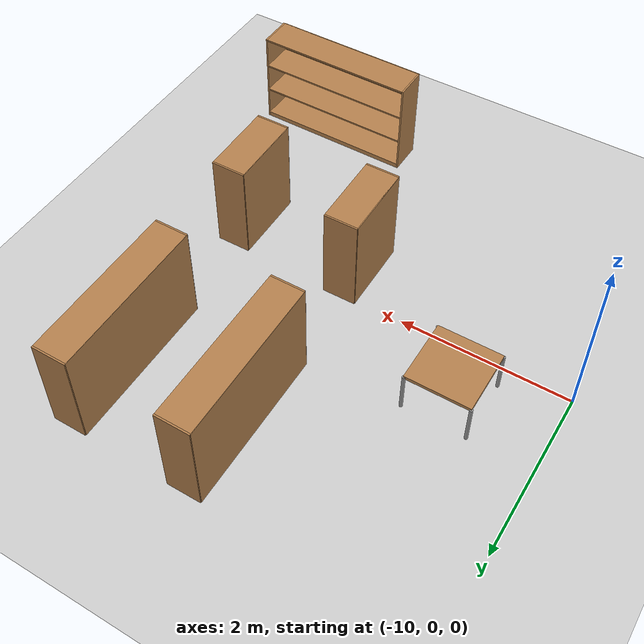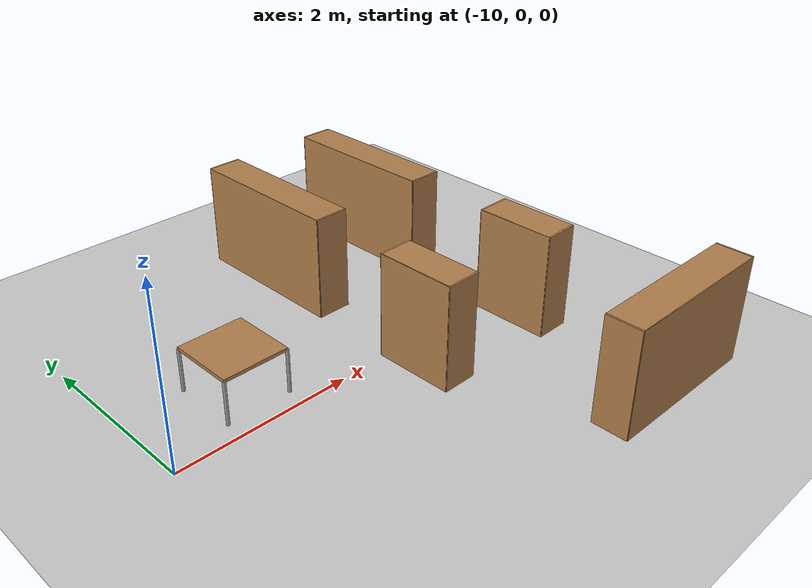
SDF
<sdf version="1.7">
 <world name="default">
  <model name="ground_plane">
   <static>1</static>
   <link name="link">
    <collision name="collision">
     <geometry><plane><normal>0 0 1</normal><size>100 100</size></plane></geometry>
     <surface><friction><ode><mu>100</mu><mu2>50</mu2></ode></friction></surface>
    </collision>
    <visual name="visual">
     <cast_shadows>0</cast_shadows>
     <geometry><plane><normal>0 0 1</normal><size>100 100</size></plane></geometry>
     <material>
      <script><uri>file://media/materials/scripts/gazebo.material</uri><name>Gazebo/Grey</name></script>
     </material>
    </visual>
   </link>
  </model>
  <model name="bookshelf_1">
   <static>1</static>
   <link name="link">
    <inertial><mass>1</mass></inertial>
    <collision name="back">
     <pose>0 0.005 0.6 0 -0 0</pose>
     <geometry><box><size>0.9 0.01 1.2</size></box></geometry>
    </collision>
    <visual name="visual1">
     <pose>0 0.005 0.6 0 -0 0</pose>
     <geometry><box><size>0.9 0.01 1.2</size></box></geometry>
     <material>
      <script><uri>file://media/materials/scripts/gazebo.material</uri><name>Gazebo/Wood</name></script>
     </material>
    </visual>
    <collision name="left_side">
     <pose>0.45 -0.195 0.6 0 -0 0</pose>
     <geometry><box><size>0.02 0.4 1.2</size></box></geometry>
    </collision>
    <visual name="visual2">
     <pose>0.45 -0.195 0.6 0 -0 0</pose>
     <geometry><box><size>0.02 0.4 1.2</size></box></geometry>
     <material>
      <script><uri>file://media/materials/scripts/gazebo.material</uri><name>Gazebo/Wood</name></script>
     </material>
    </visual>
    <collision name="right_side">
     <pose>-0.45 -0.195 0.6 0 -0 0</pose>
     <geometry><box><size>0.02 0.4 1.2</size></box></geometry>
    </collision>
    <visual name="visual3">
     <pose>-0.45 -0.195 0.6 0 -0 0</pose>
     <geometry><box><size>0.02 0.4 1.2</size></box></geometry>
     <material>
      <script><uri>file://media/materials/scripts/gazebo.material</uri><name>Gazebo/Wood</name></script>
     </material>
    </visual>
    <collision name="bottom">
     <pose>0 -0.195 0.03 0 -0 0</pose>
     <geometry><box><size>0.88 0.4 0.06</size></box></geometry>
    </collision>
    <visual name="visual4">
     <pose>0 -0.195 0.03 0 -0 0</pose>
     <geometry><box><size>0.88 0.4 0.06</size></box></geometry>
     <material>
      <script><uri>file://media/materials/scripts/gazebo.material</uri><name>Gazebo/Wood</name></script>
     </material>
    </visual>
    <collision name="top">
     <pose>0 -0.195 1.19 0 -0 0</pose>
     <geometry><box><size>0.88 0.4 0.02</size></box></geometry>
    </collision>
    <visual name="visual5">
     <pose>0 -0.195 1.19 0 -0 0</pose>
     <geometry><box><size>0.88 0.4 0.02</size></box></geometry>
     <material>
      <script><uri>file://media/materials/scripts/gazebo.material</uri><name>Gazebo/Wood</name></script>
     </material>
    </visual>
    <collision name="low_shelf">
     <pose>0 -0.195 0.43 0 -0 0</pose>
     <geometry><box><size>0.88 0.4 0.02</size></box></geometry>
    </collision>
    <visual name="visual6">
     <pose>0 -0.195 0.43 0 -0 0</pose>
     <geometry><box><size>0.88 0.4 0.02</size></box></geometry>
     <material>
      <script><uri>file://media/materials/scripts/gazebo.material</uri><name>Gazebo/Wood</name></script>
     </material>
    </visual>
    <collision name="high_shelf">
     <pose>0 -0.195 0.8 0 -0 0</pose>
     <geometry><box><size>0.88 0.4 0.02</size></box></geometry>
    </collision>
    <visual name="visual7">
     <pose>0 -0.195 0.8 0 -0 0</pose>
     <geometry><box><size>0.88 0.4 0.02</size></box></geometry>
     <material>
      <script><uri>file://media/materials/scripts/gazebo.material</uri><name>Gazebo/Wood</name></script>
     </material>
    </visual>
   </link>
   <pose>-7.42871 -0.404892 0 0 -0 1.57898</pose>
  </model>
  <model name="bookshelf_2">
   <static>1</static>
   <link name="link">
    <inertial><mass>1</mass></inertial>
    <collision name="back">
     <pose>0 0.005 0.6 0 -0 0</pose>
     <geometry><box><size>0.9 0.01 1.2</size></box></geometry>
    </collision>
    <visual name="visual1">
     <pose>0 0.005 0.6 0 -0 0</pose>
     <geometry><box><size>0.9 0.01 1.2</size></box></geometry>
     <material>
      <script><uri>file://media/materials/scripts/gazebo.material</uri><name>Gazebo/Wood</name></script>
     </material>
    </visual>
    <collision name="left_side">
     <pose>0.45 -0.195 0.6 0 -0 0</pose>
     <geometry><box><size>0.02 0.4 1.2</size></box></geometry>
    </collision>
    <visual name="visual2">
     <pose>0.45 -0.195 0.6 0 -0 0</pose>
     <geometry><box><size>0.02 0.4 1.2</size></box></geometry>
     <material>
      <script><uri>file://media/materials/scripts/gazebo.material</uri><name>Gazebo/Wood</name></script>
     </material>
    </visual>
    <collision name="right_side">
     <pose>-0.45 -0.195 0.6 0 -0 0</pose>
     <geometry><box><size>0.02 0.4 1.2</size></box></geometry>
    </collision>
    <visual name="visual3">
     <pose>-0.45 -0.195 0.6 0 -0 0</pose>
     <geometry><box><size>0.02 0.4 1.2</size></box></geometry>
     <material>
      <script><uri>file://media/materials/scripts/gazebo.material</uri><name>Gazebo/Wood</name></script>
     </material>
    </visual>
    <collision name="bottom">
     <pose>0 -0.195 0.03 0 -0 0</pose>
     <geometry><box><size>0.88 0.4 0.06</size></box></geometry>
    </collision>
    <visual name="visual4">
     <pose>0 -0.195 0.03 0 -0 0</pose>
     <geometry><box><size>0.88 0.4 0.06</size></box></geometry>
     <material>
      <script><uri>file://media/materials/scripts/gazebo.material</uri><name>Gazebo/Wood</name></script>
     </material>
    </visual>
    <collision name="top">
     <pose>0 -0.195 1.19 0 -0 0</pose>
     <geometry><box><size>0.88 0.4 0.02</size></box></geometry>
    </collision>
    <visual name="visual5">
     <pose>0 -0.195 1.19 0 -0 0</pose>
     <geometry><box><size>0.88 0.4 0.02</size></box></geometry>
     <material>
      <script><uri>file://media/materials/scripts/gazebo.material</uri><name>Gazebo/Wood</name></script>
     </material>
    </visual>
    <collision name="low_shelf">
     <pose>0 -0.195 0.43 0 -0 0</pose>
     <geometry><box><size>0.88 0.4 0.02</size></box></geometry>
    </collision>
    <visual name="visual6">
     <pose>0 -0.195 0.43 0 -0 0</pose>
     <geometry><box><size>0.88 0.4 0.02</size></box></geometry>
     <material>
      <script><uri>file://media/materials/scripts/gazebo.material</uri><name>Gazebo/Wood</name></script>
     </material>
    </visual>
    <collision name="high_shelf">
     <pose>0 -0.195 0.8 0 -0 0</pose>
     <geometry><box><size>0.88 0.4 0.02</size></box></geometry>
    </collision>
    <visual name="visual7">
     <pose>0 -0.195 0.8 0 -0 0</pose>
     <geometry><box><size>0.88 0.4 0.02</size></box></geometry>
     <material>
      <script><uri>file://media/materials/scripts/gazebo.material</uri><name>Gazebo/Wood</name></script>
     </material>
    </visual>
   </link>
   <pose>-5.98331 -0.451994 0 0 -0 1.57898</pose>
  </model>
  <model name="bookshelf_4">
   <static>1</static>
   <link name="link">
    <inertial><mass>1</mass></inertial>
    <collision name="back">
     <pose>0 0.005 0.6 0 -0 0</pose>
     <geometry><box><size>1.9 0.01 1.2</size></box></geometry>
    </collision>
    <visual name="back">
     <pose>0 0.005 0.6 0 -0 0</pose>
     <geometry><box><size>1.9 0.01 1.2</size></box></geometry>
     <material>
      <script><uri>file://media/materials/scripts/gazebo.material</uri><name>Gazebo/Wood</name></script>
     </material>
    </visual>
    <collision name="left_side">
     <pose>0.95 -0.195 0.6 0 -0 0</pose>
     <geometry><box><size>0.02 0.4 1.2</size></box></geometry>
    </collision>
    <visual name="left_side">
     <pose>0.95 -0.195 0.6 0 -0 0</pose>
     <geometry><box><size>0.02 0.4 1.2</size></box></geometry>
     <material>
      <script><uri>file://media/materials/scripts/gazebo.material</uri><name>Gazebo/Wood</name></script>
     </material>
    </visual>
    <collision name="right_side">
     <pose>-0.95 -0.195 0.6 0 -0 0</pose>
     <geometry><box><size>0.02 0.4 1.2</size></box></geometry>
    </collision>
    <visual name="right_side">
     <pose>-0.95 -0.195 0.6 0 -0 0</pose>
     <geometry><box><size>0.02 0.4 1.2</size></box></geometry>
     <material>
      <script><uri>file://media/materials/scripts/gazebo.material</uri><name>Gazebo/Wood</name></script>
     </material>
    </visual>
    <collision name="bottom">
     <pose>0 -0.195 0.03 0 -0 0</pose>
     <geometry><box><size>1.88 0.4 0.06</size></box></geometry>
    </collision>
    <visual name="bottom">
     <pose>0 -0.195 0.03 0 -0 0</pose>
     <geometry><box><size>1.88 0.4 0.06</size></box></geometry>
     <material>
      <script><uri>file://media/materials/scripts/gazebo.material</uri><name>Gazebo/Wood</name></script>
     </material>
    </visual>
    <collision name="top">
     <pose>0 -0.195 1.19 0 -0 0</pose>
     <geometry><box><size>1.88 0.4 0.02</size></box></geometry>
    </collision>
    <visual name="top">
     <pose>0 -0.195 1.19 0 -0 0</pose>
     <geometry><box><size>1.88 0.4 0.02</size></box></geometry>
     <material>
      <script><uri>file://media/materials/scripts/gazebo.material</uri><name>Gazebo/Wood</name></script>
     </material>
    </visual>
    <collision name="low_shelf">
     <pose>0 -0.195 0.43 0 -0 0</pose>
     <geometry><box><size>1.88 0.4 0.02</size></box></geometry>
    </collision>
    <visual name="low_shelf">
     <pose>0 -0.195 0.43 0 -0 0</pose>
     <geometry><box><size>1.88 0.4 0.02</size></box></geometry>
     <material>
      <script><uri>file://media/materials/scripts/gazebo.material</uri><name>Gazebo/Wood</name></script>
     </material>
    </visual>
    <collision name="high_shelf">
     <pose>0 -0.195 0.8 0 -0 0</pose>
     <geometry><box><size>1.88 0.4 0.02</size></box></geometry>
    </collision>
    <visual name="high_shelf">
     <pose>0 -0.195 0.8 0 -0 0</pose>
     <geometry><box><size>1.88 0.4 0.02</size></box></geometry>
     <material>
      <script><uri>file://media/materials/scripts/gazebo.material</uri><name>Gazebo/Wood</name></script>
     </material>
    </visual>
   </link>
   <pose>-5.84093 -2.52343 0 0 -0 3.13337</pose>
  </model>
  <model name="table_4">
   <static>1</static>
   <link name="link">
    <collision name="surface">
     <pose>0 0 0.5 0 -0 0</pose>
     <geometry><box><size>0.75 0.75 0.04</size></box></geometry>
    </collision>
    <visual name="visual1">
     <pose>0 0 0.5 0 -0 0</pose>
     <geometry><box><size>0.75 0.75 0.04</size></box></geometry>
     <material>
      <script><uri>file://media/materials/scripts/gazebo.material</uri><name>Gazebo/Wood</name></script>
     </material>
    </visual>
    <collision name="front_left_leg">
     <pose>0.37 0.37 0.25 0 -0 0</pose>
     <geometry><cylinder><radius>0.02</radius><length>0.5</length></cylinder></geometry>
    </collision>
    <visual name="front_left_leg">
     <pose>0.37 0.37 0.25 0 -0 0</pose>
     <geometry><cylinder><radius>0.02</radius><length>0.5</length></cylinder></geometry>
     <material>
      <script><uri>file://media/materials/scripts/gazebo.material</uri><name>Gazebo/Grey</name></script>
     </material>
    </visual>
    <collision name="front_right_leg">
     <pose>0.37 -0.37 0.25 0 -0 0</pose>
     <geometry><cylinder><radius>0.02</radius><length>0.5</length></cylinder></geometry>
    </collision>
    <visual name="front_right_leg">
     <pose>0.37 -0.37 0.25 0 -0 0</pose>
     <geometry><cylinder><radius>0.02</radius><length>0.5</length></cylinder></geometry>
     <material>
      <script><uri>file://media/materials/scripts/gazebo.material</uri><name>Gazebo/Grey</name></script>
     </material>
    </visual>
    <collision name="back_right_leg">
     <pose>-0.37 -0.37 0.25 0 -0 0</pose>
     <geometry><cylinder><radius>0.02</radius><length>0.5</length></cylinder></geometry>
    </collision>
    <visual name="back_right_leg">
     <pose>-0.37 -0.37 0.25 0 -0 0</pose>
     <geometry><cylinder><radius>0.02</radius><length>0.5</length></cylinder></geometry>
     <material>
      <script><uri>file://media/materials/scripts/gazebo.material</uri><name>Gazebo/Grey</name></script>
     </material>
    </visual>
    <collision name="back_left_leg">
     <pose>-0.37 0.37 0.25 0 -0 0</pose>
     <geometry><cylinder><radius>0.02</radius><length>0.5</length></cylinder></geometry>
    </collision>
    <visual name="back_left_leg">
     <pose>-0.37 0.37 0.25 0 -0 0</pose>
     <geometry><cylinder><radius>0.02</radius><length>0.5</length></cylinder></geometry>
     <material>
      <script><uri>file://media/materials/scripts/gazebo.material</uri><name>Gazebo/Grey</name></script>
     </material>
    </visual>
    <velocity_decay><linear>0</linear><angular>0</angular></velocity_decay>
   </link>
   <pose>-8.88942 0.594744 0 0 -0 0</pose>
  </model>
  <model name="bookshelf_10">
   <static>1</static>
   <link name="link">
    <inertial><mass>1</mass></inertial>
    <collision name="back">
     <pose>0 0.005 0.6 0 -0 0</pose>
     <geometry><box><size>1.9 0.01 1.2</size></box></geometry>
    </collision>
    <visual name="back">
     <pose>0 0.005 0.6 0 -0 0</pose>
     <geometry><box><size>1.9 0.01 1.2</size></box></geometry>
     <material>
      <script><uri>file://media/materials/scripts/gazebo.material</uri><name>Gazebo/Wood</name></script>
     </material>
    </visual>
    <collision name="left_side">
     <pose>0.95 -0.195 0.6 0 -0 0</pose>
     <geometry><box><size>0.02 0.4 1.2</size></box></geometry>
    </collision>
    <visual name="left_side">
     <pose>0.95 -0.195 0.6 0 -0 0</pose>
     <geometry><box><size>0.02 0.4 1.2</size></box></geometry>
     <material>
      <script><uri>file://media/materials/scripts/gazebo.material</uri><name>Gazebo/Wood</name></script>
     </material>
    </visual>
    <collision name="right_side">
     <pose>-0.95 -0.195 0.6 0 -0 0</pose>
     <geometry><box><size>0.02 0.4 1.2</size></box></geometry>
    </collision>
    <visual name="right_side">
     <pose>-0.95 -0.195 0.6 0 -0 0</pose>
     <geometry><box><size>0.02 0.4 1.2</size></box></geometry>
     <material>
      <script><uri>file://media/materials/scripts/gazebo.material</uri><name>Gazebo/Wood</name></script>
     </material>
    </visual>
    <collision name="bottom">
     <pose>0 -0.195 0.03 0 -0 0</pose>
     <geometry><box><size>1.88 0.4 0.06</size></box></geometry>
    </collision>
    <visual name="bottom">
     <pose>0 -0.195 0.03 0 -0 0</pose>
     <geometry><box><size>1.88 0.4 0.06</size></box></geometry>
     <material>
      <script><uri>file://media/materials/scripts/gazebo.material</uri><name>Gazebo/Wood</name></script>
     </material>
    </visual>
    <collision name="top">
     <pose>0 -0.195 1.19 0 -0 0</pose>
     <geometry><box><size>1.88 0.4 0.02</size></box></geometry>
    </collision>
    <visual name="top">
     <pose>0 -0.195 1.19 0 -0 0</pose>
     <geometry><box><size>1.88 0.4 0.02</size></box></geometry>
     <material>
      <script><uri>file://media/materials/scripts/gazebo.material</uri><name>Gazebo/Wood</name></script>
     </material>
    </visual>
    <collision name="low_shelf">
     <pose>0 -0.195 0.43 0 -0 0</pose>
     <geometry><box><size>1.88 0.4 0.02</size></box></geometry>
    </collision>
    <visual name="low_shelf">
     <pose>0 -0.195 0.43 0 -0 0</pose>
     <geometry><box><size>1.88 0.4 0.02</size></box></geometry>
     <material>
      <script><uri>file://media/materials/scripts/gazebo.material</uri><name>Gazebo/Wood</name></script>
     </material>
    </visual>
    <collision name="high_shelf">
     <pose>0 -0.195 0.8 0 -0 0</pose>
     <geometry><box><size>1.88 0.4 0.02</size></box></geometry>
    </collision>
    <visual name="high_shelf">
     <pose>0 -0.195 0.8 0 -0 0</pose>
     <geometry><box><size>1.88 0.4 0.02</size></box></geometry>
     <material>
      <script><uri>file://media/materials/scripts/gazebo.material</uri><name>Gazebo/Wood</name></script>
     </material>
    </visual>
   </link>
   <pose>-5.99337 1.97448 0 0 0.002317 1.57295</pose>
  </model>
  <model name="bookshelf_12">
   <static>1</static>
   <link name="link">
    <inertial><mass>1</mass></inertial>
    <collision name="back">
     <pose>0 0.005 0.6 0 -0 0</pose>
     <geometry><box><size>1.9 0.01 1.2</size></box></geometry>
    </collision>
    <visual name="back">
     <pose>0 0.005 0.6 0 -0 0</pose>
     <geometry><box><size>1.9 0.01 1.2</size></box></geometry>
     <material>
      <script><uri>file://media/materials/scripts/gazebo.material</uri><name>Gazebo/Wood</name></script>
     </material>
    </visual>
    <collision name="left_side">
     <pose>0.95 -0.195 0.6 0 -0 0</pose>
     <geometry><box><size>0.02 0.4 1.2</size></box></geometry>
    </collision>
    <visual name="left_side">
     <pose>0.95 -0.195 0.6 0 -0 0</pose>
     <geometry><box><size>0.02 0.4 1.2</size></box></geometry>
     <material>
      <script><uri>file://media/materials/scripts/gazebo.material</uri><name>Gazebo/Wood</name></script>
     </material>
    </visual>
    <collision name="right_side">
     <pose>-0.95 -0.195 0.6 0 -0 0</pose>
     <geometry><box><size>0.02 0.4 1.2</size></box></geometry>
    </collision>
    <visual name="right_side">
     <pose>-0.95 -0.195 0.6 0 -0 0</pose>
     <geometry><box><size>0.02 0.4 1.2</size></box></geometry>
     <material>
      <script><uri>file://media/materials/scripts/gazebo.material</uri><name>Gazebo/Wood</name></script>
     </material>
    </visual>
    <collision name="bottom">
     <pose>0 -0.195 0.03 0 -0 0</pose>
     <geometry><box><size>1.88 0.4 0.06</size></box></geometry>
    </collision>
    <visual name="bottom">
     <pose>0 -0.195 0.03 0 -0 0</pose>
     <geometry><box><size>1.88 0.4 0.06</size></box></geometry>
     <material>
      <script><uri>file://media/materials/scripts/gazebo.material</uri><name>Gazebo/Wood</name></script>
     </material>
    </visual>
    <collision name="top">
     <pose>0 -0.195 1.19 0 -0 0</pose>
     <geometry><box><size>1.88 0.4 0.02</size></box></geometry>
    </collision>
    <visual name="top">
     <pose>0 -0.195 1.19 0 -0 0</pose>
     <geometry><box><size>1.88 0.4 0.02</size></box></geometry>
     <material>
      <script><uri>file://media/materials/scripts/gazebo.material</uri><name>Gazebo/Wood</name></script>
     </material>
    </visual>
    <collision name="low_shelf">
     <pose>0 -0.195 0.43 0 -0 0</pose>
     <geometry><box><size>1.88 0.4 0.02</size></box></geometry>
    </collision>
    <visual name="low_shelf">
     <pose>0 -0.195 0.43 0 -0 0</pose>
     <geometry><box><size>1.88 0.4 0.02</size></box></geometry>
     <material>
      <script><uri>file://media/materials/scripts/gazebo.material</uri><name>Gazebo/Wood</name></script>
     </material>
    </visual>
    <collision name="high_shelf">
     <pose>0 -0.195 0.8 0 -0 0</pose>
     <geometry><box><size>1.88 0.4 0.02</size></box></geometry>
    </collision>
    <visual name="high_shelf">
     <pose>0 -0.195 0.8 0 -0 0</pose>
     <geometry><box><size>1.88 0.4 0.02</size></box></geometry>
     <material>
      <script><uri>file://media/materials/scripts/gazebo.material</uri><name>Gazebo/Wood</name></script>
     </material>
    </visual>
   </link>
   <pose>-7.41555 1.98111 0 0 0.002317 1.57295</pose>
  </model>
 </world>
</sdf>
